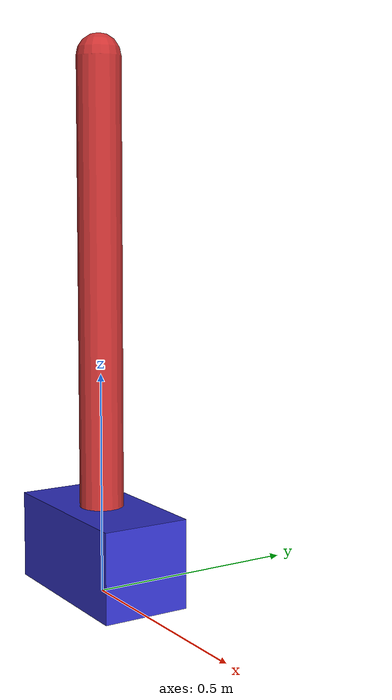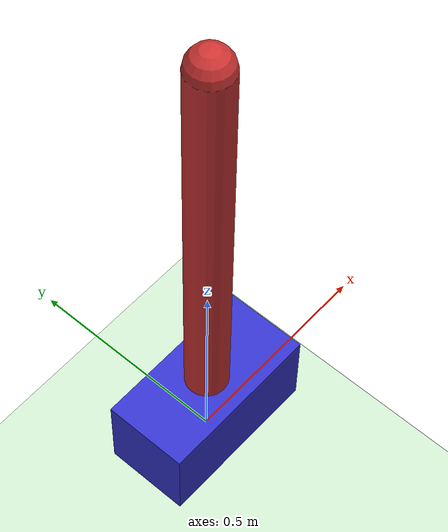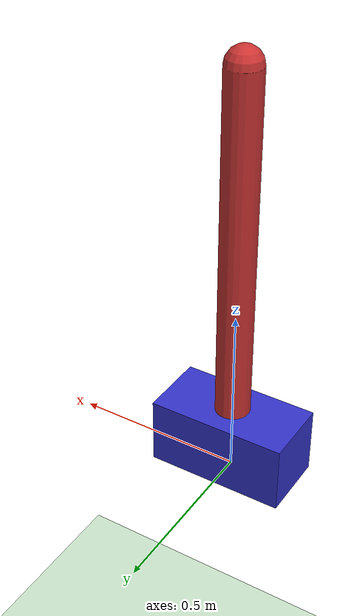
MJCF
<mujoco model="cartpole">
    <compiler angle="degree" coordinate="local" inertiafromgeom="true"/>
    <worldbody>
        <geom name="ground" type="plane" pos="0 0 -1" size="5 5 0.1" rgba="0.8 0.9 0.8 1"/>
        <body name="cartpole">
            <body name="cart" pos="0 0 0.1">
                <geom type="box" size="0.2 0.1 0.1" rgba="0.2 0.2 0.8 1" mass="1.0"/>
                <joint name="slide" type="slide" axis="1 0 0" limited="true" range="-2 2"/>
                <body name="pole" pos="0 0 0.1">
                    <geom type="capsule" size="0.05 0.5" fromto="0 0 0 0 0 1" rgba="0.8 0.2 0.2 1" mass="2.0"/>
                    <joint name="hinge" type="hinge" axis="0 1 0" range="-90 90"/>
                </body>
            </body>
        </body>
    </worldbody>
    <actuator>
        <motor name="slide" joint="slide" ctrlrange="-200 200"/>
    </actuator>
</mujoco>
